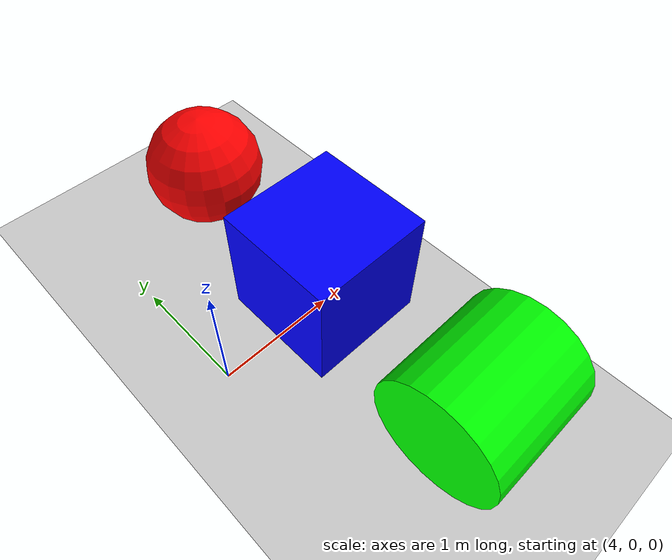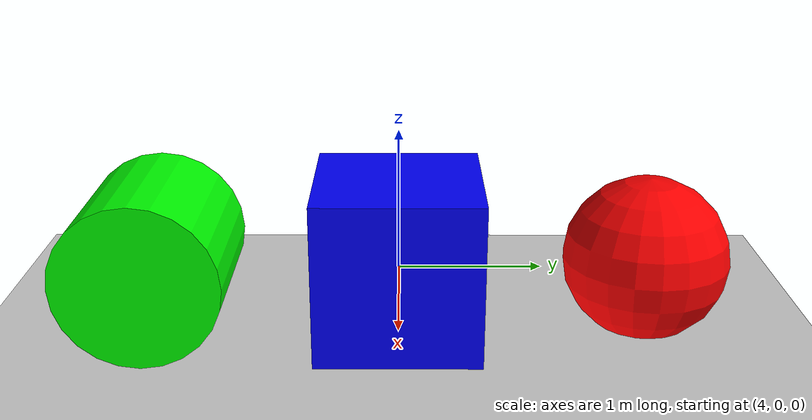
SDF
<?xml version="1.0" ?>
<sdf version="1.5">
  <world name="default">
    <include>
      <uri>model://ground_plane</uri>
    </include>
    <include>
      <uri>model://sun</uri>
    </include>
    <model name="box">
      <pose>5 0 0.5 0 0 0</pose>
      <link name="link">
        <collision name="collision">
          <geometry>
            <box>
              <size>1 1 1</size>
            </box>
          </geometry>
        </collision>
        <visual name="visual">
          <geometry>
            <box>
              <size>1 1 1</size>
            </box>
          </geometry>
          <material>
            <ambient>0 0 1 1</ambient>
            <diffuse>0 0 1 1</diffuse>
          </material>
        </visual>
      </link>
    </model>
    <model name="sphere">
      <pose>5 1.5 0.5 0 0 0</pose>
      <link name="link">
        <collision name="collision">
          <geometry>
            <sphere>
              <radius>0.5</radius>
            </sphere>
          </geometry>
        </collision>
        <visual name="visual">
          <geometry>
            <sphere>
              <radius>0.5</radius>
            </sphere>
          </geometry>
          <material>
            <ambient>1 0 0 1</ambient>
            <diffuse>1 0 0 1</diffuse>
          </material>
        </visual>
      </link>
    </model>
    <model name="cylinder">
      <pose>5 -1.5 0.5 0 1.5707 0</pose>
      <link name="link">
        <collision name="collision">
          <geometry>
            <cylinder>
              <radius>0.5</radius>
              <length>1.0</length>
            </cylinder>
          </geometry>
        </collision>
        <visual name="visual">
          <geometry>
            <cylinder>
              <radius>0.5</radius>
              <length>1.0</length>
            </cylinder>
          </geometry>
          <material>
            <ambient>0 1 0 1</ambient>
            <diffuse>0 1 0 1</diffuse>
          </material>
        </visual>
      </link>
    </model>
  </world>
</sdf>
